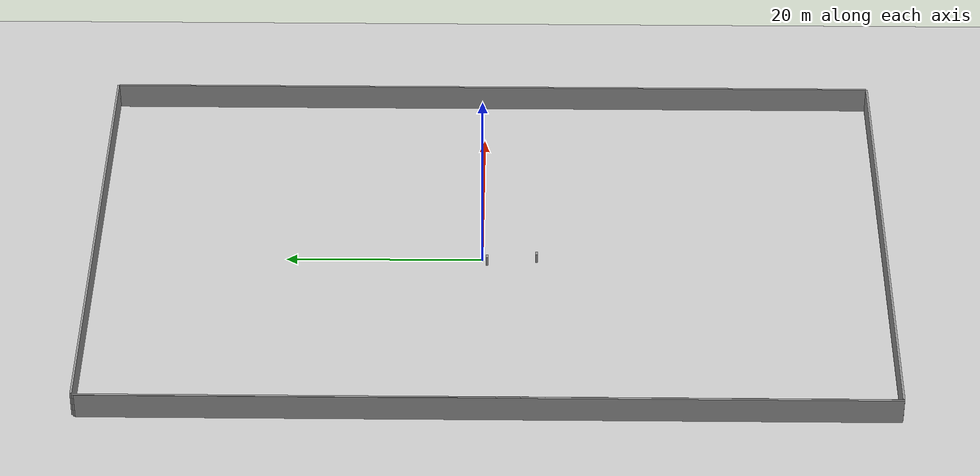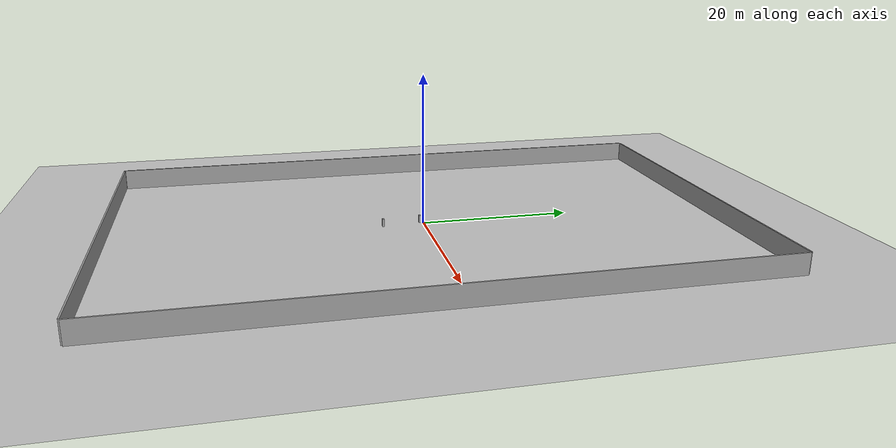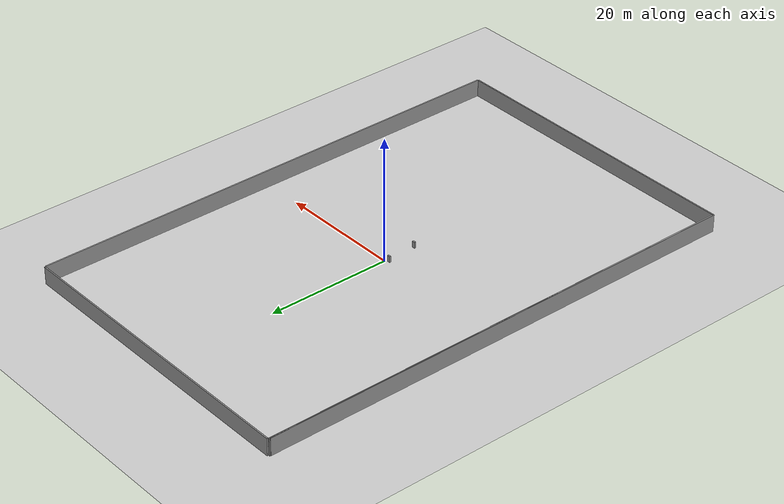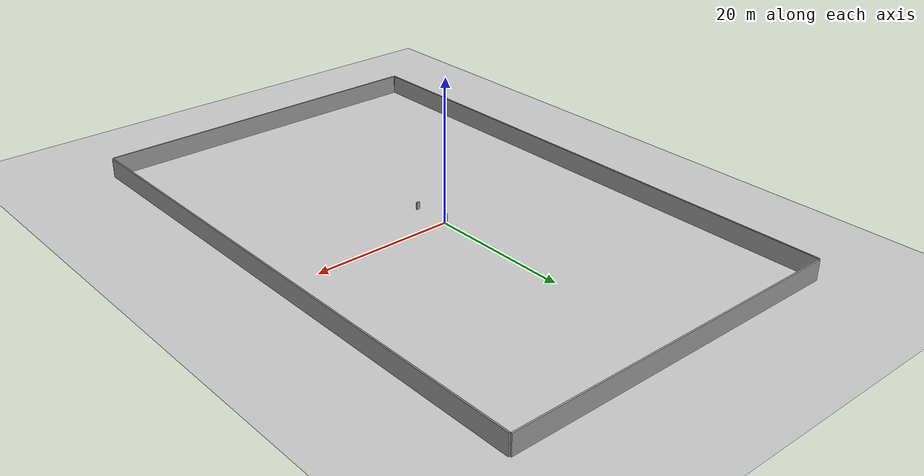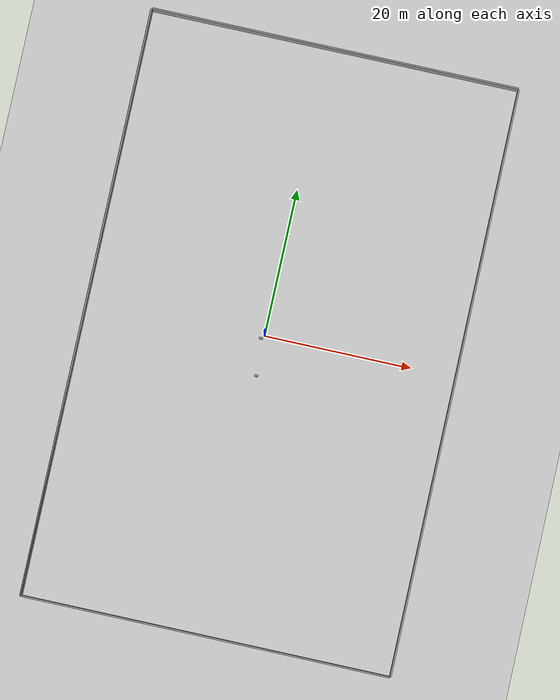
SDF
<sdf version="1.7">
 <world name="default">
  <model name="ground_plane">
   <static>1</static>
   <link name="link">
    <collision name="collision">
     <geometry><plane><normal>0 0 1</normal><size>100 100</size></plane></geometry>
     <surface>
      <contact><collide_bitmask>65535</collide_bitmask></contact>
      <friction><ode><mu>100</mu><mu2>50</mu2></ode></friction>
     </surface>
    </collision>
    <visual name="visual">
     <cast_shadows>0</cast_shadows>
     <geometry><plane><normal>0 0 1</normal><size>100 100</size></plane></geometry>
     <material>
      <script><uri>file://media/materials/scripts/gazebo.material</uri><name>Gazebo/Grey</name></script>
     </material>
    </visual>
   </link>
  </model>
  <model name="grey_wall_four_closed">
   <link name="link">
    <pose>0.242491 26.6162 1.4 0 -0 0</pose>
    <inertial>
     <mass>1</mass>
     <inertia><ixx>1</ixx><ixy>0</ixy><ixz>0</ixz><iyy>1</iyy><iyz>0</iyz><izz>1</izz></inertia>
    </inertial>
    <visual name="visual">
     <cast_shadows>0</cast_shadows>
     <geometry><box><size>50 0.2 2.8</size></box></geometry>
     <material>
      <script>
       <uri>model://grey_wall/materials/scripts</uri>
       <uri>model://grey_wall/materials/textures</uri>
       <name>vrc/grey_wall</name>
      </script>
      <shader type="pixel"><normal_map>__default__</normal_map></shader>
      <ambient>1 1 1 1</ambient>
      <diffuse>1 1 1 1</diffuse>
      <specular>0 0 0 1</specular>
      <emissive>0 0 0 1</emissive>
     </material>
    </visual>
    <collision name="collision">
     <geometry><box><size>50 0.2 2.8</size></box></geometry>
     <surface>
      <friction>
       <ode><mu>1</mu><mu2>1</mu2><fdir1>0 0 0</fdir1><slip1>0</slip1><slip2>0</slip2></ode>
       <torsional>
        <coefficient>1</coefficient>
        <patch_radius>0</patch_radius>
        <surface_radius>0</surface_radius>
        <use_patch_radius>1</use_patch_radius>
        <ode><slip>0</slip></ode>
       </torsional>
      </friction>
      <bounce><restitution_coefficient>0</restitution_coefficient><threshold>1e+06</threshold></bounce>
      <contact>
       <collide_without_contact>0</collide_without_contact>
       <collide_without_contact_bitmask>1</collide_without_contact_bitmask>
       <collide_bitmask>1</collide_bitmask>
       <ode>
        <soft_cfm>0</soft_cfm>
        <soft_erp>0.2</soft_erp>
        <kp>1e+13</kp>
        <kd>1</kd>
        <max_vel>0.01</max_vel>
        <min_depth>0</min_depth>
       </ode>
       <bullet>
        <split_impulse>1</split_impulse>
        <split_impulse_penetration_threshold>-0.01</split_impulse_penetration_threshold>
        <soft_cfm>0</soft_cfm>
        <soft_erp>0.2</soft_erp>
        <kp>1e+13</kp>
        <kd>1</kd>
       </bullet>
      </contact>
     </surface>
    </collision>
   </link>
   <link name="link_clone">
    <pose>0.215468 -53.6091 1.4 0 -0 0</pose>
    <inertial>
     <mass>1</mass>
     <inertia><ixx>1</ixx><ixy>0</ixy><ixz>0</ixz><iyy>1</iyy><iyz>0</iyz><izz>1</izz></inertia>
    </inertial>
    <visual name="visual">
     <cast_shadows>0</cast_shadows>
     <geometry><box><size>50 0.2 2.8</size></box></geometry>
     <material>
      <script>
       <uri>model://grey_wall/materials/scripts</uri>
       <uri>model://grey_wall/materials/textures</uri>
       <name>vrc/grey_wall</name>
      </script>
      <shader type="pixel"><normal_map>__default__</normal_map></shader>
      <ambient>1 1 1 1</ambient>
      <diffuse>1 1 1 1</diffuse>
      <specular>0 0 0 1</specular>
      <emissive>0 0 0 1</emissive>
     </material>
    </visual>
    <collision name="collision">
     <geometry><box><size>50 0.2 2.8</size></box></geometry>
     <surface>
      <friction>
       <ode><mu>1</mu><mu2>1</mu2><fdir1>0 0 0</fdir1><slip1>0</slip1><slip2>0</slip2></ode>
       <torsional>
        <coefficient>1</coefficient>
        <patch_radius>0</patch_radius>
        <surface_radius>0</surface_radius>
        <use_patch_radius>1</use_patch_radius>
        <ode><slip>0</slip></ode>
       </torsional>
      </friction>
      <bounce><restitution_coefficient>0</restitution_coefficient><threshold>1e+06</threshold></bounce>
      <contact>
       <collide_without_contact>0</collide_without_contact>
       <collide_without_contact_bitmask>1</collide_without_contact_bitmask>
       <collide_bitmask>1</collide_bitmask>
       <ode>
        <soft_cfm>0</soft_cfm>
        <soft_erp>0.2</soft_erp>
        <kp>1e+13</kp>
        <kd>1</kd>
        <max_vel>0.01</max_vel>
        <min_depth>0</min_depth>
       </ode>
       <bullet>
        <split_impulse>1</split_impulse>
        <split_impulse_penetration_threshold>-0.01</split_impulse_penetration_threshold>
        <soft_cfm>0</soft_cfm>
        <soft_erp>0.2</soft_erp>
        <kp>1e+13</kp>
        <kd>1</kd>
       </bullet>
      </contact>
     </surface>
    </collision>
   </link>
   <link name="link_clone_0">
    <pose>25.3282 -13.5096 1.4 0 -0 0</pose>
    <inertial>
     <mass>1</mass>
     <inertia><ixx>1</ixx><ixy>0</ixy><ixz>0</ixz><iyy>1</iyy><iyz>0</iyz><izz>1</izz></inertia>
    </inertial>
    <visual name="visual">
     <cast_shadows>0</cast_shadows>
     <geometry><box><size>0.2 80 2.8</size></box></geometry>
     <material>
      <script>
       <uri>model://grey_wall/materials/scripts</uri>
       <uri>model://grey_wall/materials/textures</uri>
       <name>vrc/grey_wall</name>
      </script>
      <shader type="pixel"><normal_map>__default__</normal_map></shader>
      <ambient>1 1 1 1</ambient>
      <diffuse>1 1 1 1</diffuse>
      <specular>0 0 0 1</specular>
      <emissive>0 0 0 1</emissive>
     </material>
    </visual>
    <collision name="collision">
     <geometry><box><size>0.2 80 2.8</size></box></geometry>
     <surface>
      <friction>
       <ode><mu>1</mu><mu2>1</mu2><fdir1>0 0 0</fdir1><slip1>0</slip1><slip2>0</slip2></ode>
       <torsional>
        <coefficient>1</coefficient>
        <patch_radius>0</patch_radius>
        <surface_radius>0</surface_radius>
        <use_patch_radius>1</use_patch_radius>
        <ode><slip>0</slip></ode>
       </torsional>
      </friction>
      <bounce><restitution_coefficient>0</restitution_coefficient><threshold>1e+06</threshold></bounce>
      <contact>
       <collide_without_contact>0</collide_without_contact>
       <collide_without_contact_bitmask>1</collide_without_contact_bitmask>
       <collide_bitmask>1</collide_bitmask>
       <ode>
        <soft_cfm>0</soft_cfm>
        <soft_erp>0.2</soft_erp>
        <kp>1e+13</kp>
        <kd>1</kd>
        <max_vel>0.01</max_vel>
        <min_depth>0</min_depth>
       </ode>
       <bullet>
        <split_impulse>1</split_impulse>
        <split_impulse_penetration_threshold>-0.01</split_impulse_penetration_threshold>
        <soft_cfm>0</soft_cfm>
        <soft_erp>0.2</soft_erp>
        <kp>1e+13</kp>
        <kd>1</kd>
       </bullet>
      </contact>
     </surface>
    </collision>
   </link>
   <link name="link_clone_0_clone">
    <pose>-24.9038 -13.4873 1.4 0 -0 0</pose>
    <inertial>
     <mass>1</mass>
     <inertia><ixx>1</ixx><ixy>0</ixy><ixz>0</ixz><iyy>1</iyy><iyz>0</iyz><izz>1</izz></inertia>
    </inertial>
    <visual name="visual">
     <cast_shadows>0</cast_shadows>
     <geometry><box><size>0.2 80 2.8</size></box></geometry>
     <material>
      <script>
       <uri>model://grey_wall/materials/scripts</uri>
       <uri>model://grey_wall/materials/textures</uri>
       <name>vrc/grey_wall</name>
      </script>
      <shader type="pixel"><normal_map>__default__</normal_map></shader>
      <ambient>1 1 1 1</ambient>
      <diffuse>1 1 1 1</diffuse>
      <specular>0 0 0 1</specular>
      <emissive>0 0 0 1</emissive>
     </material>
    </visual>
    <collision name="collision">
     <geometry><box><size>0.2 80 2.8</size></box></geometry>
     <surface>
      <friction>
       <ode><mu>1</mu><mu2>1</mu2><fdir1>0 0 0</fdir1><slip1>0</slip1><slip2>0</slip2></ode>
       <torsional>
        <coefficient>1</coefficient>
        <patch_radius>0</patch_radius>
        <surface_radius>0</surface_radius>
        <use_patch_radius>1</use_patch_radius>
        <ode><slip>0</slip></ode>
       </torsional>
      </friction>
      <bounce><restitution_coefficient>0</restitution_coefficient><threshold>1e+06</threshold></bounce>
      <contact>
       <collide_without_contact>0</collide_without_contact>
       <collide_without_contact_bitmask>1</collide_without_contact_bitmask>
       <collide_bitmask>1</collide_bitmask>
       <ode>
        <soft_cfm>0</soft_cfm>
        <soft_erp>0.2</soft_erp>
        <kp>1e+13</kp>
        <kd>1</kd>
        <max_vel>0.01</max_vel>
        <min_depth>0</min_depth>
       </ode>
       <bullet>
        <split_impulse>1</split_impulse>
        <split_impulse_penetration_threshold>-0.01</split_impulse_penetration_threshold>
        <soft_cfm>0</soft_cfm>
        <soft_erp>0.2</soft_erp>
        <kp>1e+13</kp>
        <kd>1</kd>
       </bullet>
      </contact>
     </surface>
    </collision>
   </link>
   <link name="link_clone_0_clone_0">
    <pose>-24.9422 -13.6564 1.4 0 -0 0</pose>
    <inertial>
     <mass>1</mass>
     <inertia><ixx>1</ixx><ixy>0</ixy><ixz>0</ixz><iyy>1</iyy><iyz>0</iyz><izz>1</izz></inertia>
    </inertial>
    <visual name="visual">
     <cast_shadows>0</cast_shadows>
     <geometry><box><size>0.2 80 2.8</size></box></geometry>
     <material>
      <script>
       <uri>model://grey_wall/materials/scripts</uri>
       <uri>model://grey_wall/materials/textures</uri>
       <name>vrc/grey_wall</name>
      </script>
      <shader type="pixel"><normal_map>__default__</normal_map></shader>
      <ambient>1 1 1 1</ambient>
      <diffuse>1 1 1 1</diffuse>
      <specular>0 0 0 1</specular>
      <emissive>0 0 0 1</emissive>
     </material>
    </visual>
    <collision name="collision">
     <geometry><box><size>0.2 80 2.8</size></box></geometry>
     <surface>
      <friction>
       <ode><mu>1</mu><mu2>1</mu2><fdir1>0 0 0</fdir1><slip1>0</slip1><slip2>0</slip2></ode>
       <torsional>
        <coefficient>1</coefficient>
        <patch_radius>0</patch_radius>
        <surface_radius>0</surface_radius>
        <use_patch_radius>1</use_patch_radius>
        <ode><slip>0</slip></ode>
       </torsional>
      </friction>
      <bounce><restitution_coefficient>0</restitution_coefficient><threshold>1e+06</threshold></bounce>
      <contact>
       <collide_without_contact>0</collide_without_contact>
       <collide_without_contact_bitmask>1</collide_without_contact_bitmask>
       <collide_bitmask>1</collide_bitmask>
       <ode>
        <soft_cfm>0</soft_cfm>
        <soft_erp>0.2</soft_erp>
        <kp>1e+13</kp>
        <kd>1</kd>
        <max_vel>0.01</max_vel>
        <min_depth>0</min_depth>
       </ode>
       <bullet>
        <split_impulse>1</split_impulse>
        <split_impulse_penetration_threshold>-0.01</split_impulse_penetration_threshold>
        <soft_cfm>0</soft_cfm>
        <soft_erp>0.2</soft_erp>
        <kp>1e+13</kp>
        <kd>1</kd>
       </bullet>
      </contact>
     </surface>
    </collision>
   </link>
   <static>1</static>
   <pose>0.69016 12.8234 0 0 -0 0</pose>
  </model>
  <model name="box_race_car_clone_61">
   <link name="link">
    <inertial>
     <mass>1</mass>
     <inertia>
      <ixx>0.166667</ixx>
      <ixy>0</ixy>
      <ixz>0</ixz>
      <iyy>0.166667</iyy>
      <iyz>0</iyz>
      <izz>0.166667</izz>
     </inertia>
    </inertial>
    <visual name="visual">
     <geometry><box><size>0.5 0.25 1</size></box></geometry>
     <material>
      <script><name>Gazebo/Grey</name><uri>file://media/materials/scripts/gazebo.material</uri></script>
      <shader type="pixel"><normal_map>__default__</normal_map></shader>
      <ambient>0.3 0.3 0.3 1</ambient>
      <diffuse>0.7 0.7 0.7 1</diffuse>
      <specular>0.01 0.01 0.01 1</specular>
      <emissive>0 0 0 1</emissive>
     </material>
    </visual>
    <collision name="collision">
     <geometry><box><size>0.5 0.25 1</size></box></geometry>
     <surface>
      <friction>
       <ode><mu>1</mu><mu2>1</mu2><fdir1>0 0 0</fdir1><slip1>0</slip1><slip2>0</slip2></ode>
       <torsional>
        <coefficient>1</coefficient>
        <patch_radius>0</patch_radius>
        <surface_radius>0</surface_radius>
        <use_patch_radius>1</use_patch_radius>
        <ode><slip>0</slip></ode>
       </torsional>
      </friction>
      <bounce><restitution_coefficient>0</restitution_coefficient><threshold>1e+06</threshold></bounce>
      <contact>
       <collide_without_contact>0</collide_without_contact>
       <collide_without_contact_bitmask>1</collide_without_contact_bitmask>
       <collide_bitmask>1</collide_bitmask>
       <ode>
        <soft_cfm>0</soft_cfm>
        <soft_erp>0.2</soft_erp>
        <kp>1e+13</kp>
        <kd>1</kd>
        <max_vel>0.01</max_vel>
        <min_depth>0</min_depth>
       </ode>
       <bullet>
        <split_impulse>1</split_impulse>
        <split_impulse_penetration_threshold>-0.01</split_impulse_penetration_threshold>
        <soft_cfm>0</soft_cfm>
        <soft_erp>0.2</soft_erp>
        <kp>1e+13</kp>
        <kd>1</kd>
       </bullet>
      </contact>
     </surface>
    </collision>
   </link>
   <static>0</static>
   <pose>1e-06 -5.44807 0.500001 0 -2e-06 7.8e-05</pose>
  </model>
  <model name="box_race_car_clone_62">
   <link name="link">
    <inertial>
     <mass>1</mass>
     <inertia>
      <ixx>0.166667</ixx>
      <ixy>0</ixy>
      <ixz>0</ixz>
      <iyy>0.166667</iyy>
      <iyz>0</iyz>
      <izz>0.166667</izz>
     </inertia>
    </inertial>
    <visual name="visual">
     <geometry><box><size>0.5 0.25 1</size></box></geometry>
     <material>
      <script><name>Gazebo/Grey</name><uri>file://media/materials/scripts/gazebo.material</uri></script>
      <shader type="pixel"><normal_map>__default__</normal_map></shader>
      <ambient>0.3 0.3 0.3 1</ambient>
      <diffuse>0.7 0.7 0.7 1</diffuse>
      <specular>0.01 0.01 0.01 1</specular>
      <emissive>0 0 0 1</emissive>
     </material>
    </visual>
    <collision name="collision">
     <geometry><box><size>0.5 0.25 1</size></box></geometry>
     <surface>
      <friction>
       <ode><mu>1</mu><mu2>1</mu2><fdir1>0 0 0</fdir1><slip1>0</slip1><slip2>0</slip2></ode>
       <torsional>
        <coefficient>1</coefficient>
        <patch_radius>0</patch_radius>
        <surface_radius>0</surface_radius>
        <use_patch_radius>1</use_patch_radius>
        <ode><slip>0</slip></ode>
       </torsional>
      </friction>
      <bounce><restitution_coefficient>0</restitution_coefficient><threshold>1e+06</threshold></bounce>
      <contact>
       <collide_without_contact>0</collide_without_contact>
       <collide_without_contact_bitmask>1</collide_without_contact_bitmask>
       <collide_bitmask>1</collide_bitmask>
       <ode>
        <soft_cfm>0</soft_cfm>
        <soft_erp>0.2</soft_erp>
        <kp>1e+13</kp>
        <kd>1</kd>
        <max_vel>0.01</max_vel>
        <min_depth>0</min_depth>
       </ode>
       <bullet>
        <split_impulse>1</split_impulse>
        <split_impulse_penetration_threshold>-0.01</split_impulse_penetration_threshold>
        <soft_cfm>0</soft_cfm>
        <soft_erp>0.2</soft_erp>
        <kp>1e+13</kp>
        <kd>1</kd>
       </bullet>
      </contact>
     </surface>
    </collision>
   </link>
   <static>0</static>
   <pose>-0.490854 -0.424992 0.500001 -0 -2e-06 5.3e-05</pose>
  </model>
 </world>
</sdf>
